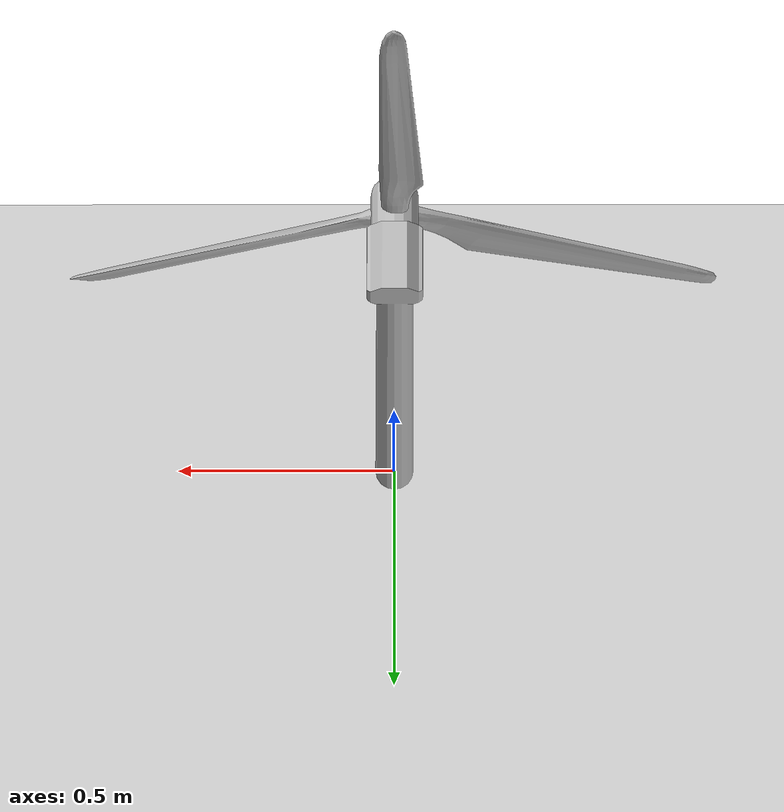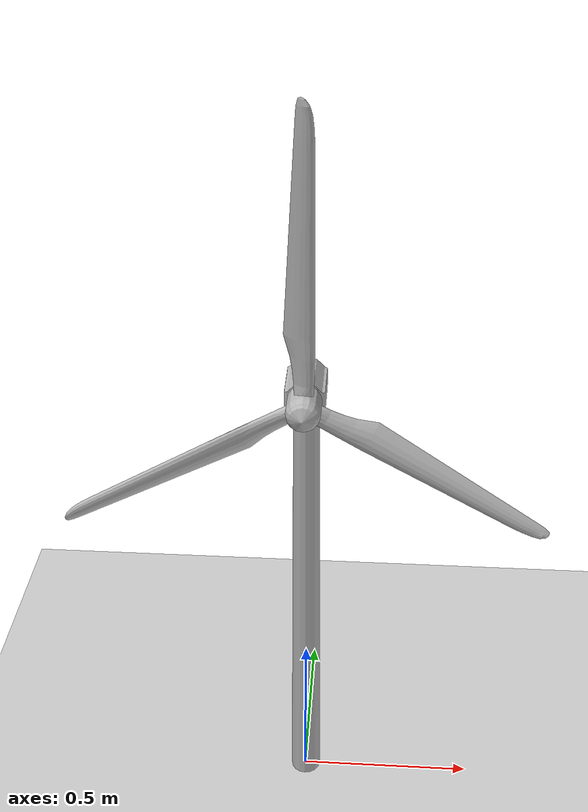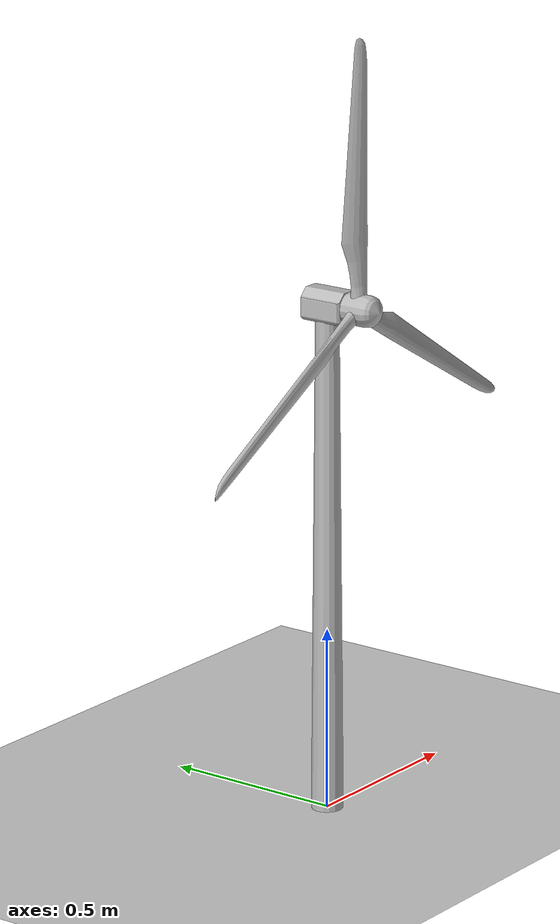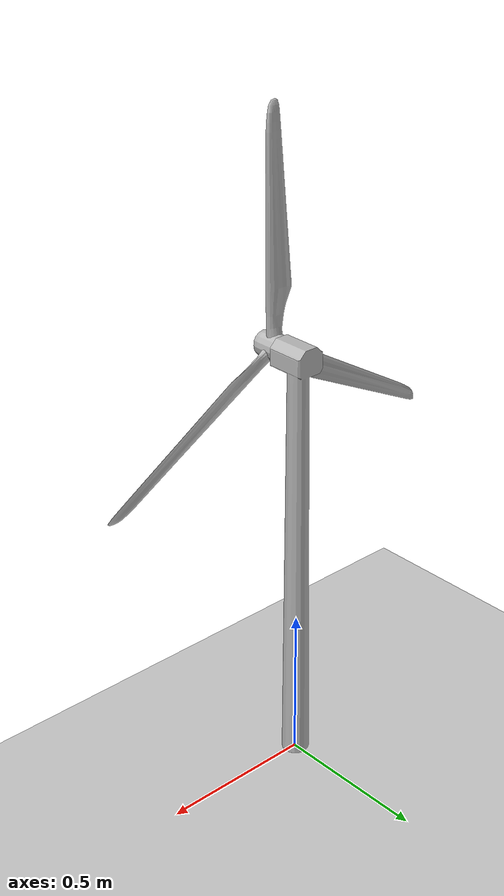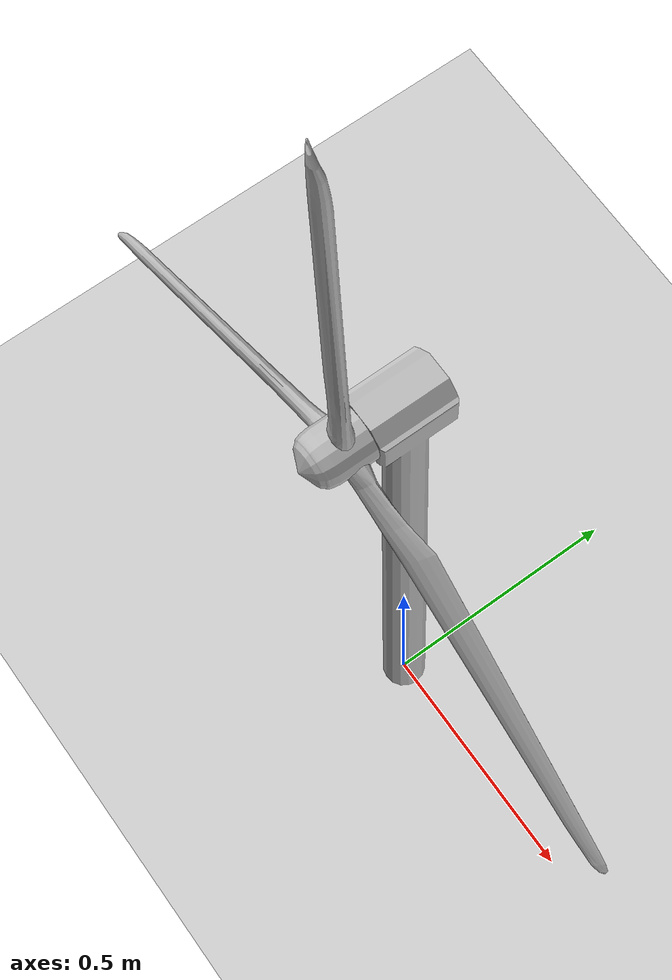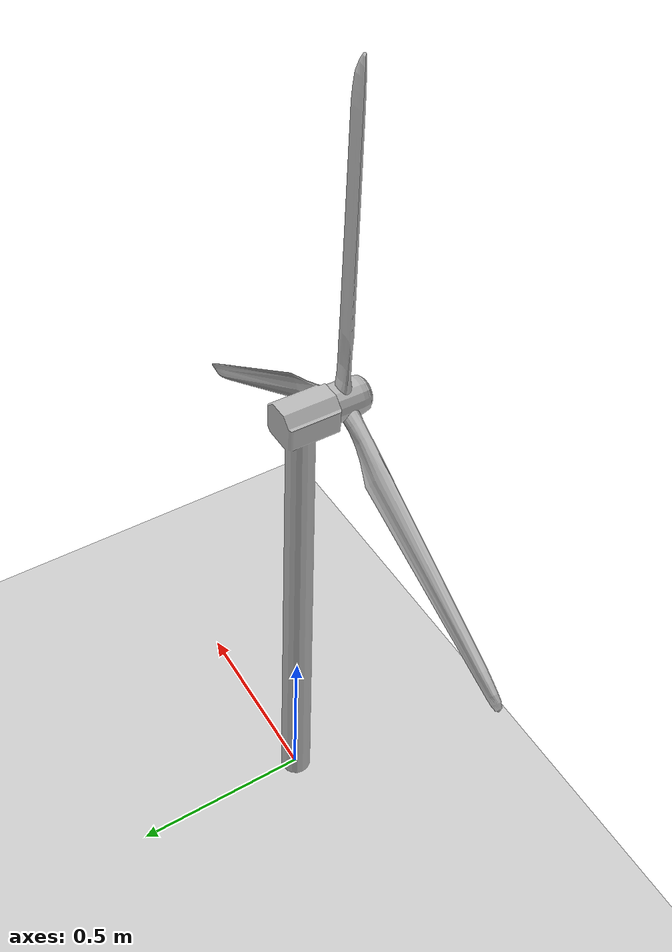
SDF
<?xml version="1.0" ?>
<sdf version="1.6">
  <world name="wind_turbine_world">

    <gui fullscreen="0">
      <camera name="user_camera">
        <pose>6 -8 4 0 0.25 2.2</pose>
        <view_controller>orbit</view_controller>
      </camera>
    </gui>

    <physics name="default_physics" default="1" type="ode">
      <gravity>0 0 -9.8066</gravity>
      <max_step_size>0.004</max_step_size>
      <real_time_factor>1.0</real_time_factor>
      <real_time_update_rate>250</real_time_update_rate>
    </physics>

    <include>
      <uri>model://sun</uri>
    </include>

    <model name="ground_plane">
      <static>true</static>
      <link name="link">
        <collision name="collision">
          <geometry>
            <plane>
              <normal>0 0 1</normal>
              <size>100 100</size>
            </plane>
          </geometry>
        </collision>
        <visual name="visual">
          <cast_shadows>false</cast_shadows>
          <geometry>
            <plane>
              <normal>0 0 1</normal>
              <size>100 100</size>
            </plane>
          </geometry>
          <material>
            <script>
              <uri>file://media/materials/scripts/gazebo.material</uri>
              <name>Gazebo/Grey</name>
            </script>
          </material>
        </visual>
      </link>
    </model>

    <model name="wind_turbine">
      <static>false</static>
      <pose>0 0 0 0 0 0</pose>

      <link name="support_link">
        <pose>0 0 0 0 0 0</pose>
        <collision name="support_collision">
          <pose>0 0 0.715 0 0 0</pose>
          <geometry>
            <box>
              <size>0.1 0.123 1.43</size>
            </box>
          </geometry>
        </collision>
        <visual name="support_visual">
          <geometry>
            <mesh>
              <uri>file:///home/amov/Prometheus/Simulator/gazebo_simulator/models/wind_turbine/meshes/Support.stl</uri>
            </mesh>
          </geometry>
        </visual>
        <inertial>
          <mass>20</mass>
          <inertia>
            <ixx>3.43338</ixx>
            <ixy>0</ixy>
            <ixz>0</ixz>
            <iyy>3.42482</iyy>
            <iyz>0</iyz>
            <izz>0.04188</izz>
          </inertia>
        </inertial>
      </link>

      <link name="center_link">
        <pose>0 -0.107 1.3884 0 0 0</pose>
        <collision name="center_collision">
          <geometry>
            <box>
              <size>0.0839 0.11 0.0844</size>
            </box>
          </geometry>
        </collision>
        <visual name="center_visual">
          <pose>0 0.107 -1.3884 0 0 0</pose>
          <geometry>
            <mesh>
              <uri>file:///home/amov/Prometheus/Simulator/gazebo_simulator/models/wind_turbine/meshes/Center.stl</uri>
            </mesh>
          </geometry>
        </visual>
        <inertial>
          <mass>4</mass>
          <inertia>
            <ixx>0.00640</ixx>
            <ixy>0</ixy>
            <ixz>0</ixz>
            <iyy>0.00472</iyy>
            <iyz>0</iyz>
            <izz>0.00638</izz>
          </inertia>
        </inertial>
      </link>

      <link name="blade1_link">
        <pose>0 -0.107 1.3884 0 0 0</pose>
        <collision name="blade1_collision">
          <pose>0.2933 0 -0.1695 0 -1.05 0</pose>
          <geometry>
            <box>
              <size>0.0746 0.0374 0.678</size>
            </box>
          </geometry>
        </collision>
        <visual name="blade1_visual">
          <pose>0 0.107 -1.3884 0 0 0</pose>
          <geometry>
            <mesh>
              <uri>file:///home/amov/Prometheus/Simulator/gazebo_simulator/models/wind_turbine/meshes/Blade1.stl</uri>
            </mesh>
          </geometry>
        </visual>
        <inertial>
          <mass>1.0</mass>
          <inertia>
            <ixx>0.03842</ixx>
            <ixy>0</ixy>
            <ixz>0</ixz>
            <iyy>0.03877</iyy>
            <iyz>0</iyz>
            <izz>0.00058</izz>
          </inertia>
        </inertial>
      </link>

      <link name="blade2_link">
        <pose>0 -0.107 1.3884 0 0 0</pose>
        <collision name="blade2_collision">
          <pose>-0.2933 0 -0.1695 0 1.05 0</pose>
          <geometry>
            <box>
              <size>0.0746 0.0374 0.678</size>
            </box>
          </geometry>
        </collision>
        <visual name="blade2_visual">
          <pose>0 0.107 -1.3884 0 0 0</pose>
          <geometry>
            <mesh>
              <uri>file:///home/amov/Prometheus/Simulator/gazebo_simulator/models/wind_turbine/meshes/Blade2.stl</uri>
            </mesh>
          </geometry>
        </visual>
        <inertial>
          <mass>1.0</mass>
          <inertia>
            <ixx>0.03842</ixx>
            <ixy>0</ixy>
            <ixz>0</ixz>
            <iyy>0.03877</iyy>
            <iyz>0</iyz>
            <izz>0.00058</izz>
          </inertia>
        </inertial>
      </link>

      <link name="blade3_link">
        <pose>0 -0.107 1.3884 0 0 0</pose>
        <collision name="blade3_collision">
          <pose>0 0 0.339 0 0 0</pose>
          <geometry>
            <box>
              <size>0.0746 0.0374 0.678</size>
            </box>
          </geometry>
        </collision>
        <visual name="blade3_visual">
          <pose>0 0.107 -1.3884 0 0 0</pose>
          <geometry>
            <mesh>
              <uri>file:///home/amov/Prometheus/Simulator/gazebo_simulator/models/wind_turbine/meshes/Blade3.stl</uri>
            </mesh>
          </geometry>
        </visual>
        <inertial>
          <mass>1.0</mass>
          <inertia>
            <ixx>0.03842</ixx>
            <ixy>0</ixy>
            <ixz>0</ixz>
            <iyy>0.03877</iyy>
            <iyz>0</iyz>
            <izz>0.00058</izz>
          </inertia>
        </inertial>
      </link>

      <joint name="center2support" type="revolute">
        <parent>support_link</parent>
        <child>center_link</child>
        <pose>0 -0.107 1.3884 0 0 0</pose>
        <axis>
          <xyz>0 1 0</xyz>
          <limit>
            <lower>-1800</lower>
            <upper>1800</upper>
            <effort>10</effort>
            <velocity>0.009</velocity>
          </limit>
        </axis>
      </joint>

      <joint name="blade12center" type="fixed">
        <parent>center_link</parent>
        <child>blade1_link</child>
      </joint>

      <joint name="blade22center" type="fixed">
        <parent>center_link</parent>
        <child>blade2_link</child>
      </joint>

      <joint name="blade32center" type="fixed">
        <parent>center_link</parent>
        <child>blade3_link</child>
      </joint>
    </model>

  </world>
</sdf>
